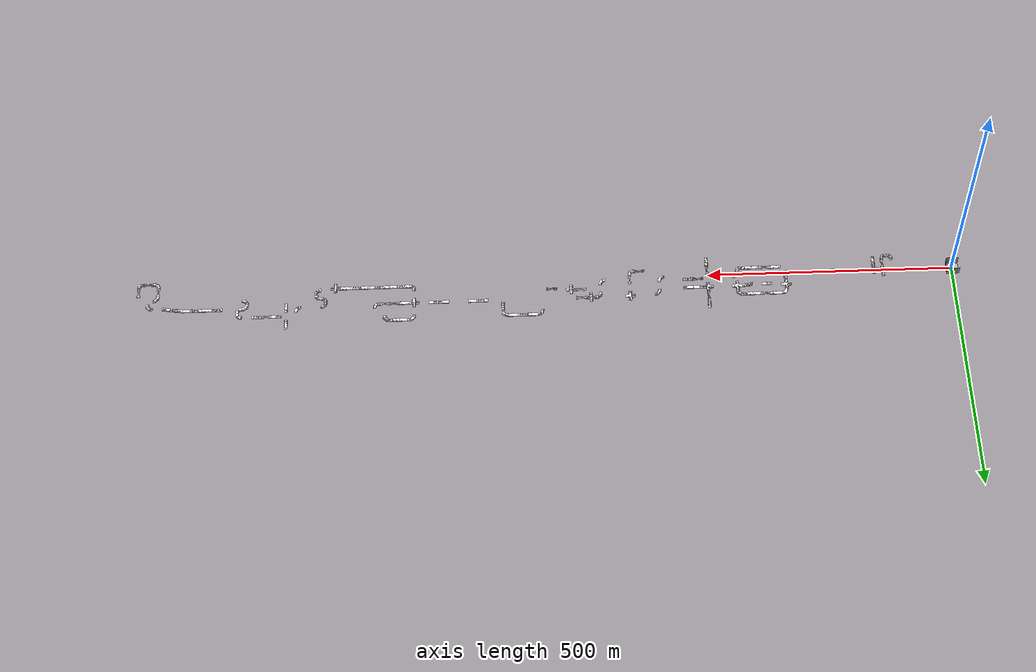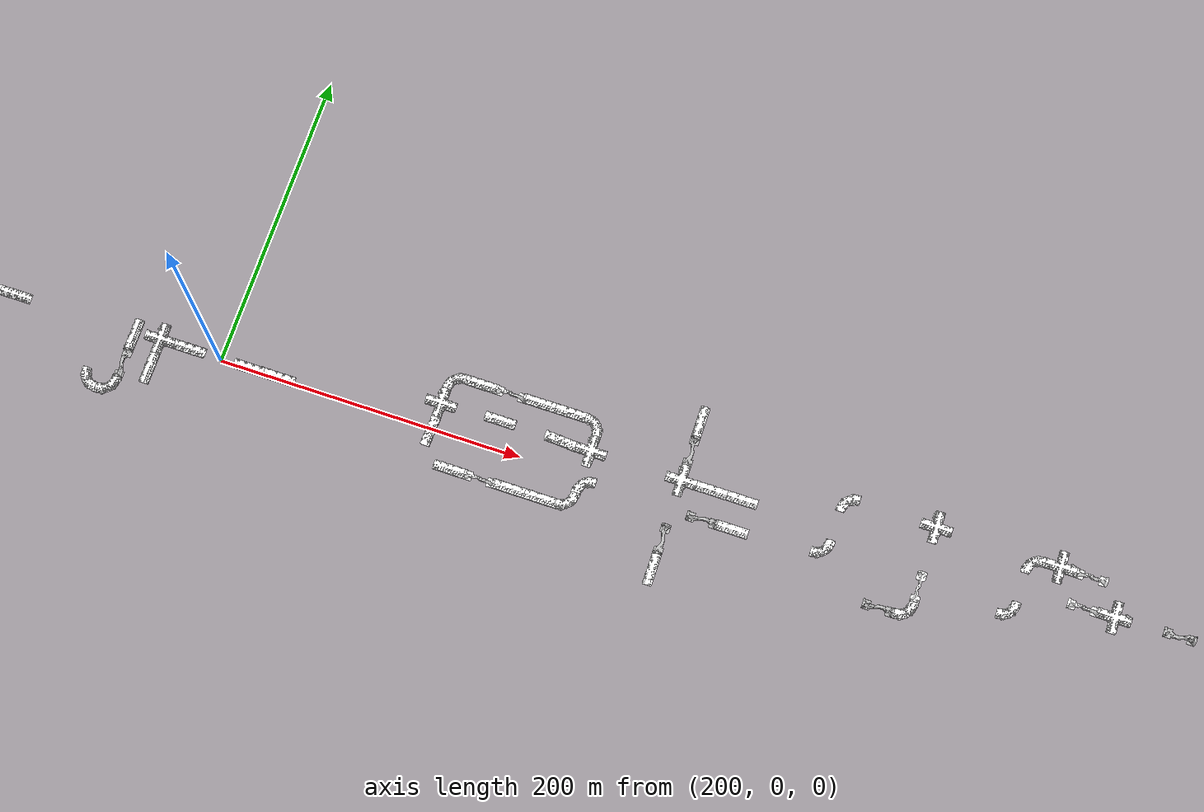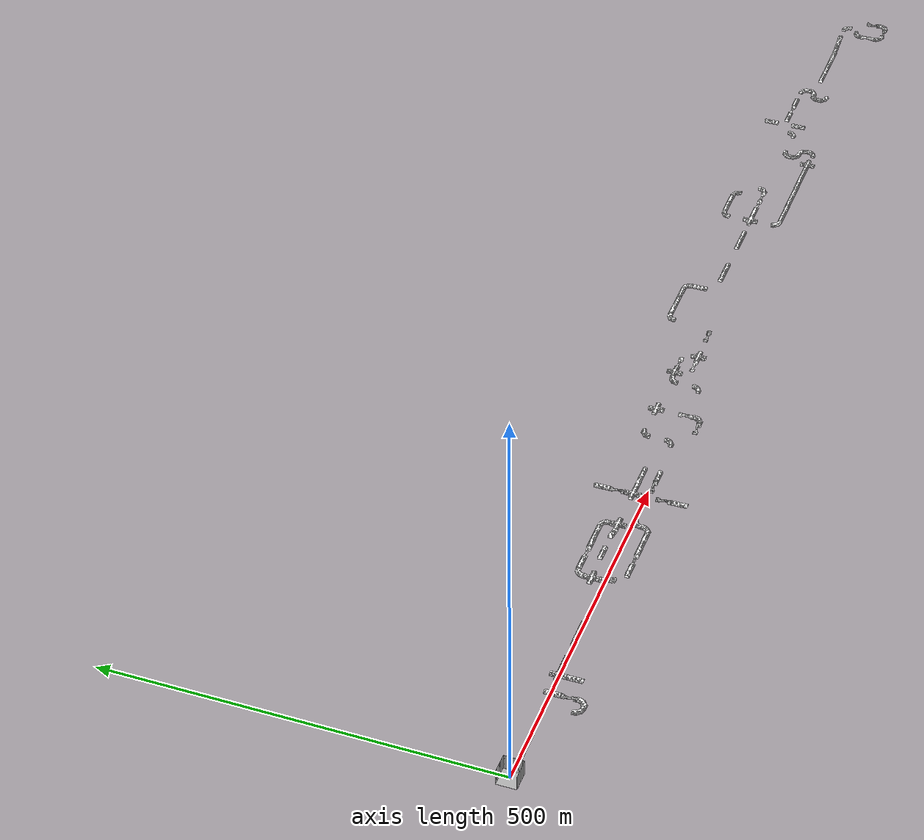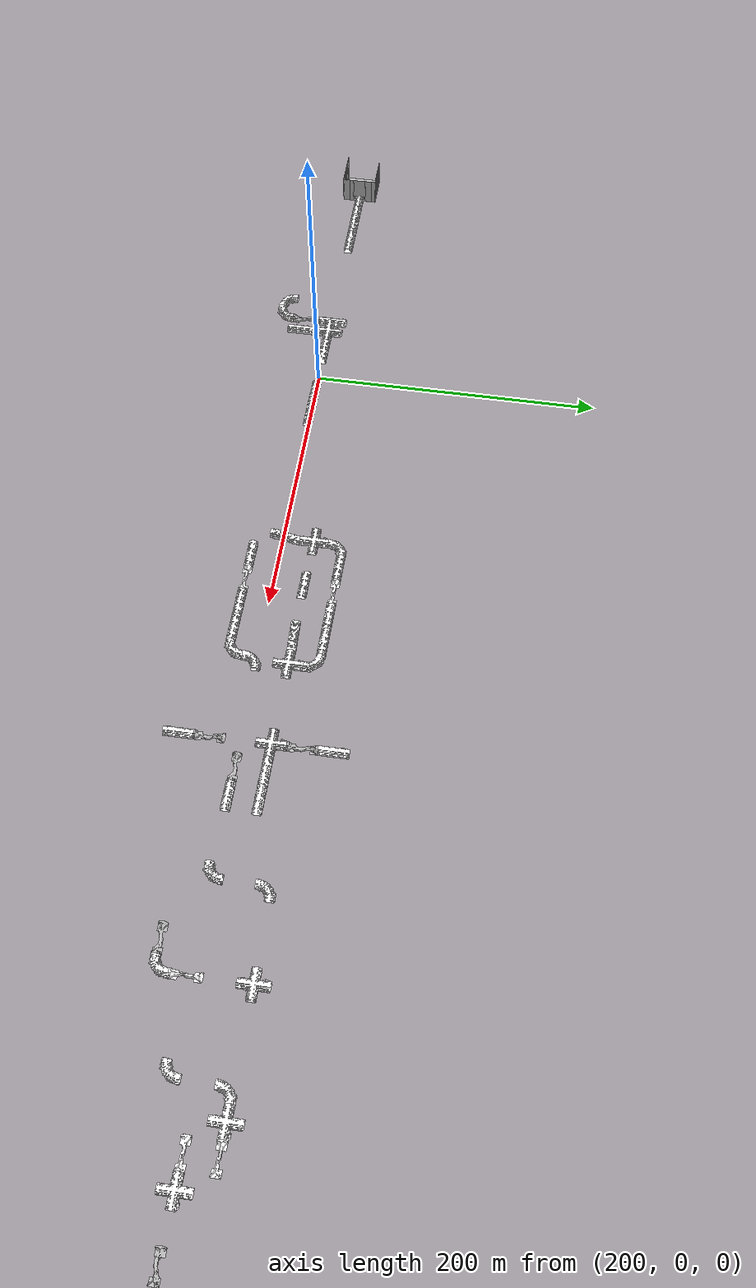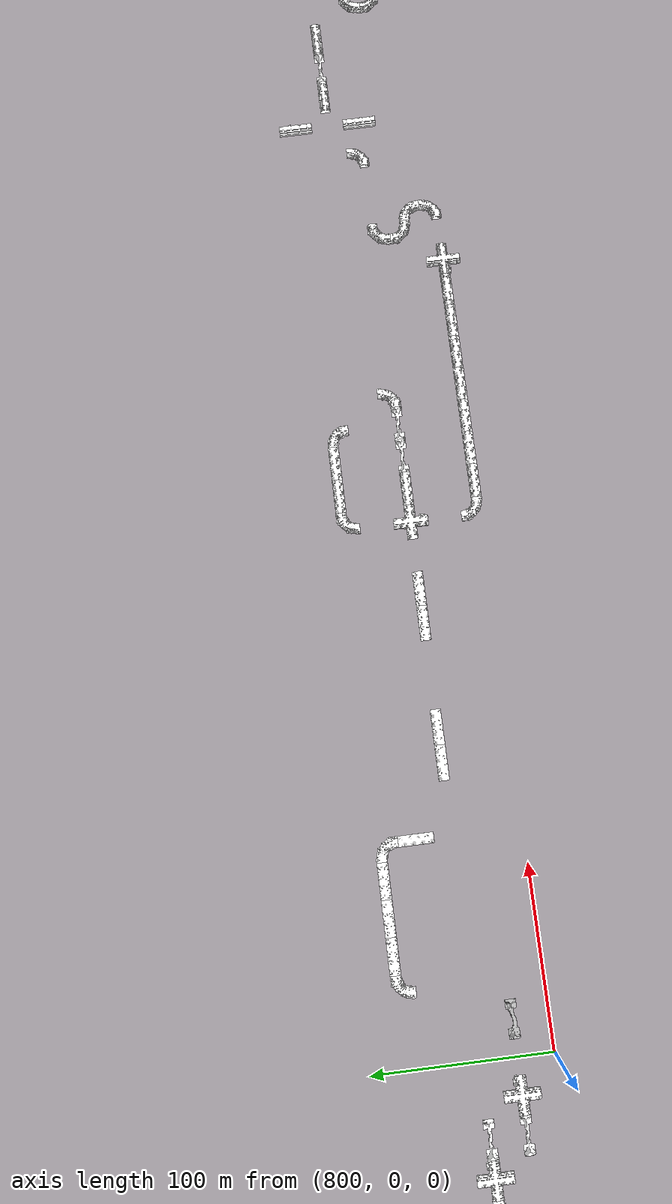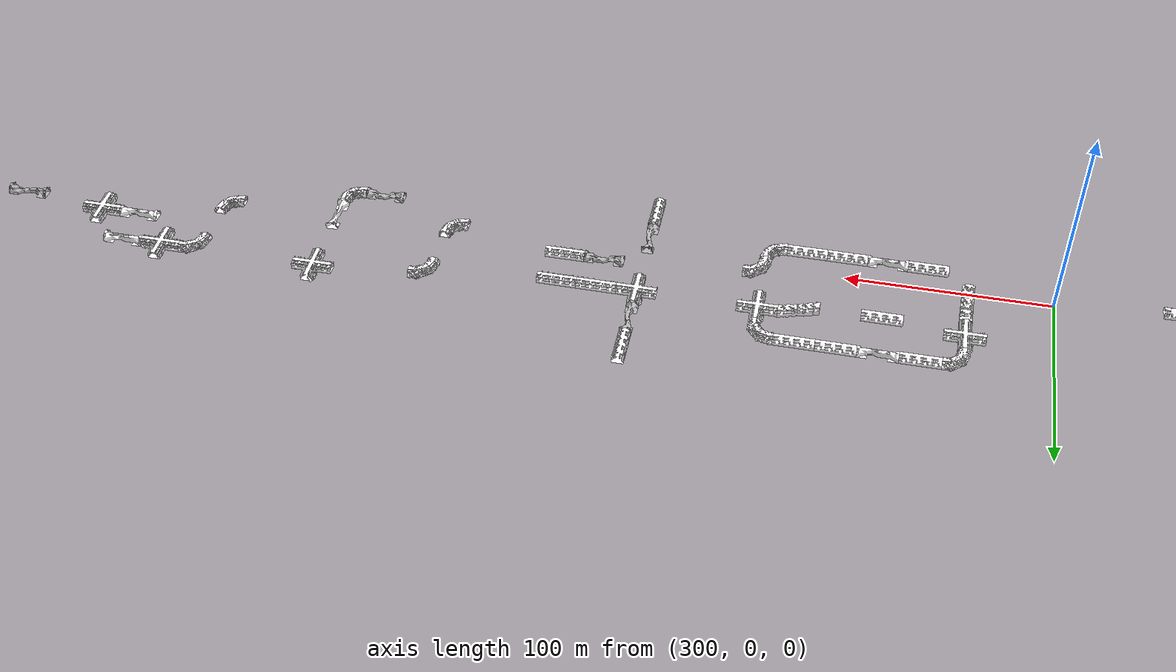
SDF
<sdf version="1.6">
 <world name="tunnel_circuit_practice_02">
  <physics name="1ms" type="ode">
   <max_step_size>0.004</max_step_size>
   <real_time_factor>1.0</real_time_factor>
  </physics>
  <scene>
   <ambient>1 1 1 1</ambient>
   <background>0.8 0.8 0.8 1</background>
   <shadows>true</shadows>
   <grid>true</grid>
   <origin_visual>true</origin_visual>
  </scene>
  <include><static>true</static><name>staging_area</name><uri>model://subt_tunnel_staging_area</uri></include>
  <include>
   <name>tile_1</name>
   <uri>model://Rough Tunnel Tile 90-degree Turn</uri>
   <pose>840.000000 80.000000 0.000000 0 0 0.000000</pose>
  </include>
  <include>
   <name>tile_2</name>
   <uri>model://Tunnel Tile 5</uri>
   <pose>860.000000 80.000000 0.000000 0 0 -1.570796</pose>
  </include>
  <include>
   <name>tile_3</name>
   <uri>model://Tunnel Tile 5</uri>
   <pose>880.000000 80.000000 0.000000 0 0 -1.570796</pose>
  </include>
  <include>
   <name>tile_4</name>
   <uri>model://Tunnel Tile 5</uri>
   <pose>900.000000 80.000000 0.000000 0 0 -1.570796</pose>
  </include>
  <include>
   <name>tile_5</name>
   <uri>model://Rough Tunnel Tile 90-degree Turn</uri>
   <pose>920.000000 80.000000 0.000000 0 0 -1.570796</pose>
  </include>
  <include>
   <name>tile_6</name>
   <uri>model://Rough Tunnel Tile 90-degree Turn</uri>
   <pose>1100.000000 80.000000 -5.000000 0 0 0.000000</pose>
  </include>
  <include>
   <name>tile_7</name>
   <uri>model://Tunnel Tile 5</uri>
   <pose>1120.000000 80.000000 -5.000000 0 0 1.570796</pose>
  </include>
  <include>
   <name>tile_8</name>
   <uri>model://Tunnel Tile 5</uri>
   <pose>1140.000000 80.000000 -5.000000 0 0 1.570796</pose>
  </include>
  <include>
   <name>tile_9</name>
   <uri>model://Rough Tunnel Tile 90-degree Turn</uri>
   <pose>1160.000000 80.000000 -5.000000 0 0 -1.570796</pose>
  </include>
  <include>
   <name>tile_10</name>
   <uri>model://Tunnel Tile 5</uri>
   <pose>1360.000000 80.000000 -10.000000 0 0 0.000000</pose>
  </include>
  <include>
   <name>tile_12</name>
   <uri>model://Tunnel Tile 5</uri>
   <pose>500.000000 60.000000 -10.000000 0 0 -3.141593</pose>
  </include>
  <include>
   <name>tile_15</name>
   <uri>model://Tunnel Tile 5</uri>
   <pose>920.000000 60.000000 0.000000 0 0 -3.141593</pose>
  </include>
  <include>
   <name>tile_19</name>
   <uri>model://Tunnel Tile 5</uri>
   <pose>1380.000000 60.000000 -10.000000 0 0 -1.570796</pose>
  </include>
  <include>
   <name>tile_20</name>
   <uri>model://Constrained Tunnel Tile Tall</uri>
   <pose>1400.000000 60.000000 -10.000000 0 0 1.570796</pose>
  </include>
  <include>
   <name>tile_21</name>
   <uri>model://Tunnel Tile 5</uri>
   <pose>1420.000000 60.000000 -10.000000 0 0 1.570796</pose>
  </include>
  <include>
   <name>tile_23</name>
   <uri>model://Rough Tunnel Tile 90-degree Turn</uri>
   <pose>1460.000000 60.000000 -10.000000 0 0 -1.570796</pose>
  </include>
  <include>
   <name>tile_27</name>
   <uri>model://Rough Tunnel Tile 90-degree Turn</uri>
   <pose>340.000000 40.000000 -10.000000 0 0 0.000000</pose>
  </include>
  <include>
   <name>tile_28</name>
   <uri>model://Tunnel Tile 5</uri>
   <pose>360.000000 40.000000 -10.000000 0 0 1.570796</pose>
  </include>
  <include>
   <name>tile_29</name>
   <uri>model://Constrained Tunnel Tile Tall</uri>
   <pose>380.000000 40.000000 -10.000000 0 0 1.570796</pose>
  </include>
  <include>
   <name>tile_30</name>
   <uri>model://Tunnel Tile 5</uri>
   <pose>400.000000 40.000000 -10.000000 0 0 1.570796</pose>
  </include>
  <include>
   <name>tile_31</name>
   <uri>model://Tunnel Tile 5</uri>
   <pose>420.000000 40.000000 -10.000000 0 0 1.570796</pose>
  </include>
  <include>
   <name>tile_32</name>
   <uri>model://Rough Tunnel Tile 90-degree Turn</uri>
   <pose>440.000000 40.000000 -10.000000 0 0 -1.570796</pose>
  </include>
  <include>
   <name>tile_33</name>
   <uri>model://Constrained Tunnel Tile Short</uri>
   <pose>500.000000 40.000000 -10.000000 0 0 0.000000</pose>
  </include>
  <include>
   <name>tile_34</name>
   <uri>model://Rough Tunnel Tile 90-degree Turn</uri>
   <pose>600.000000 40.000000 0.000000 0 0 0.000000</pose>
  </include>
  <include>
   <name>tile_37</name>
   <uri>model://Rough Tunnel Tile 4-way Intersection</uri>
   <pose>660.000000 40.000000 -5.000000 0 0 1.570796</pose>
  </include>
  <include>
   <name>tile_40</name>
   <uri>model://Rough Tunnel Tile 90-degree Turn</uri>
   <pose>720.000000 40.000000 -5.000000 0 0 0.000000</pose>
  </include>
  <include>
   <name>tile_41</name>
   <uri>model://Rough Tunnel Tile 4-way Intersection</uri>
   <pose>740.000000 40.000000 -5.000000 0 0 0.000000</pose>
  </include>
  <include>
   <name>tile_43</name>
   <uri>model://Constrained Tunnel Tile Tall</uri>
   <pose>760.000000 40.000000 -5.000000 0 0 -1.570796</pose>
  </include>
  <include>
   <name>tile_48</name>
   <uri>model://Tunnel Tile 5</uri>
   <pose>960.000000 40.000000 -5.000000 0 0 1.570796</pose>
  </include>
  <include>
   <name>tile_49</name>
   <uri>model://Tunnel Tile 5</uri>
   <pose>980.000000 40.000000 -5.000000 0 0 1.570796</pose>
  </include>
  <include>
   <name>tile_52</name>
   <uri>model://Tunnel Tile 5</uri>
   <pose>1040.000000 40.000000 -5.000000 0 0 -1.570796</pose>
  </include>
  <include>
   <name>tile_53</name>
   <uri>model://Tunnel Tile 5</uri>
   <pose>1060.000000 40.000000 -5.000000 0 0 -1.570796</pose>
  </include>
  <include>
   <name>tile_55</name>
   <uri>model://Rough Tunnel Tile 4-way Intersection</uri>
   <pose>1100.000000 40.000000 -5.000000 0 0 -1.570796</pose>
  </include>
  <include>
   <name>tile_56</name>
   <uri>model://Tunnel Tile 5</uri>
   <pose>1120.000000 40.000000 -5.000000 0 0 1.570796</pose>
  </include>
  <include>
   <name>tile_57</name>
   <uri>model://Constrained Tunnel Tile Tall</uri>
   <pose>1140.000000 40.000000 -5.000000 0 0 -1.570796</pose>
  </include>
  <include>
   <name>tile_58</name>
   <uri>model://Constrained Tunnel Tile Tall</uri>
   <pose>1160.000000 40.000000 -5.000000 0 0 -1.570796</pose>
  </include>
  <include>
   <name>tile_60</name>
   <uri>model://Rough Tunnel Tile 90-degree Turn</uri>
   <pose>1180.000000 40.000000 -5.000000 0 0 -3.141593</pose>
  </include>
  <include>
   <name>tile_62</name>
   <uri>model://Rough Tunnel Tile 90-degree Turn</uri>
   <pose>1280.000000 40.000000 -10.000000 0 0 0.000000</pose>
  </include>
  <include>
   <name>tile_65</name>
   <uri>model://Rough Tunnel Tile 90-degree Turn</uri>
   <pose>1340.000000 40.000000 -10.000000 0 0 -3.141593</pose>
  </include>
  <include>
   <name>tile_66</name>
   <uri>model://Tunnel Tile 5</uri>
   <pose>1360.000000 40.000000 -10.000000 0 0 0.000000</pose>
  </include>
  <include>
   <name>tile_68</name>
   <uri>model://Rough Tunnel Tile 90-degree Turn</uri>
   <pose>1440.000000 40.000000 -10.000000 0 0 0.000000</pose>
  </include>
  <include>
   <name>tile_69</name>
   <uri>model://Rough Tunnel Tile 90-degree Turn</uri>
   <pose>1460.000000 40.000000 -10.000000 0 0 -3.141593</pose>
  </include>
  <include>
   <name>tile_71</name>
   <uri>model://Tunnel Tile 5</uri>
   <pose>1500.000000 40.000000 -10.000000 0 0 -1.570796</pose>
  </include>
  <include>
   <name>tile_72</name>
   <uri>model://Tunnel Tile 5</uri>
   <pose>1520.000000 40.000000 -10.000000 0 0 -1.570796</pose>
  </include>
  <include>
   <name>tile_73</name>
   <uri>model://Tunnel Tile 5</uri>
   <pose>1540.000000 40.000000 -10.000000 0 0 -1.570796</pose>
  </include>
  <include>
   <name>tile_74</name>
   <uri>model://Tunnel Tile 5</uri>
   <pose>1560.000000 40.000000 -10.000000 0 0 -1.570796</pose>
  </include>
  <include>
   <name>tile_75</name>
   <uri>model://Tunnel Tile 6</uri>
   <pose>1580.000000 40.000000 -10.000000 0 0 -1.570796</pose>
  </include>
  <include>
   <name>tile_76</name>
   <uri>model://Tunnel Tile 6</uri>
   <pose>1600.000000 40.000000 -5.000000 0 0 -1.570796</pose>
  </include>
  <include>
   <name>tile_78</name>
   <uri>model://Rough Tunnel Tile 90-degree Turn</uri>
   <pose>1640.000000 40.000000 0.000000 0 0 -1.570796</pose>
  </include>
  <include>
   <name>tile_85</name>
   <uri>model://Rough Tunnel Tile 4-way Intersection</uri>
   <pose>340.000000 20.000000 -10.000000 0 0 1.570796</pose>
  </include>
  <include>
   <name>tile_87</name>
   <uri>model://Tunnel Tile 5</uri>
   <pose>380.000000 20.000000 -5.000000 0 0 1.570796</pose>
  </include>
  <include>
   <name>tile_89</name>
   <uri>model://Tunnel Tile 6</uri>
   <pose>420.000000 20.000000 -10.000000 0 0 1.570796</pose>
  </include>
  <include>
   <name>tile_90</name>
   <uri>model://Rough Tunnel Tile 4-way Intersection</uri>
   <pose>440.000000 20.000000 -10.000000 0 0 1.570796</pose>
  </include>
  <include>
   <name>tile_94</name>
   <uri>model://Rough Tunnel Tile 4-way Intersection</uri>
   <pose>500.000000 20.000000 -10.000000 0 0 1.570796</pose>
  </include>
  <include>
   <name>tile_95</name>
   <uri>model://Tunnel Tile 5</uri>
   <pose>520.000000 20.000000 -10.000000 0 0 -1.570796</pose>
  </include>
  <include>
   <name>tile_96</name>
   <uri>model://Tunnel Tile 5</uri>
   <pose>540.000000 20.000000 -10.000000 0 0 -1.570796</pose>
  </include>
  <include>
   <name>tile_107</name>
   <uri>model://Constrained Tunnel Tile Tall</uri>
   <pose>760.000000 20.000000 -5.000000 0 0 1.570796</pose>
  </include>
  <include>
   <name>tile_108</name>
   <uri>model://Rough Tunnel Tile 4-way Intersection</uri>
   <pose>780.000000 20.000000 -5.000000 0 0 0.000000</pose>
  </include>
  <include>
   <name>tile_111</name>
   <uri>model://Constrained Tunnel Tile Short</uri>
   <pose>820.000000 20.000000 0.000000 0 0 -1.570796</pose>
  </include>
  <include>
   <name>tile_116</name>
   <uri>model://Rough Tunnel Tile 90-degree Turn</uri>
   <pose>1280.000000 20.000000 -10.000000 0 0 1.570796</pose>
  </include>
  <include>
   <name>tile_117</name>
   <uri>model://Rough Tunnel Tile 90-degree Turn</uri>
   <pose>1300.000000 20.000000 -10.000000 0 0 -1.570796</pose>
  </include>
  <include>
   <name>tile_118</name>
   <uri>model://Rough Tunnel Tile 90-degree Turn</uri>
   <pose>1440.000000 20.000000 -10.000000 0 0 1.570796</pose>
  </include>
  <include>
   <name>tile_121</name>
   <uri>model://Rough Tunnel Tile 90-degree Turn</uri>
   <pose>1620.000000 20.000000 0.000000 0 0 0.000000</pose>
  </include>
  <include>
   <name>tile_125</name>
   <uri>model://Tunnel Tile 5</uri>
   <pose>20.000000 0.000000 0.000000 0 0 -1.570796</pose>
  </include>
  <include>
   <name>tile_126</name>
   <uri>model://Tunnel Tile 5</uri>
   <pose>40.000000 0.000000 0.000000 0 0 -1.570796</pose>
  </include>
  <include>
   <name>tile_127</name>
   <uri>model://Tunnel Tile 5</uri>
   <pose>60.000000 0.000000 0.000000 0 0 -1.570796</pose>
  </include>
  <include>
   <name>tile_132</name>
   <uri>model://Tunnel Tile 5</uri>
   <pose>140.000000 0.000000 -5.000000 0 0 -3.141593</pose>
  </include>
  <include>
   <name>tile_134</name>
   <uri>model://Rough Tunnel Tile 4-way Intersection</uri>
   <pose>160.000000 0.000000 5.000000 0 0 1.570796</pose>
  </include>
  <include>
   <name>tile_136</name>
   <uri>model://Tunnel Tile 5</uri>
   <pose>180.000000 0.000000 5.000000 0 0 1.570796</pose>
  </include>
  <include>
   <name>tile_138</name>
   <uri>model://Tunnel Tile 5</uri>
   <pose>220.000000 0.000000 5.000000 0 0 1.570796</pose>
  </include>
  <include>
   <name>tile_139</name>
   <uri>model://Tunnel Tile 5</uri>
   <pose>240.000000 0.000000 5.000000 0 0 1.570796</pose>
  </include>
  <include>
   <name>tile_141</name>
   <uri>model://Tunnel Tile 6</uri>
   <pose>340.000000 0.000000 -10.000000 0 0 -3.141593</pose>
  </include>
  <include>
   <name>tile_142</name>
   <uri>model://Rough Tunnel Tile 90-degree Turn</uri>
   <pose>440.000000 0.000000 -5.000000 0 0 0.000000</pose>
  </include>
  <include>
   <name>tile_146</name>
   <uri>model://Constrained Tunnel Tile Short</uri>
   <pose>520.000000 0.000000 -10.000000 0 0 1.570796</pose>
  </include>
  <include>
   <name>tile_147</name>
   <uri>model://Tunnel Tile 5</uri>
   <pose>540.000000 0.000000 -10.000000 0 0 -1.570796</pose>
  </include>
  <include>
   <name>tile_151</name>
   <uri>model://Rough Tunnel Tile 90-degree Turn</uri>
   <pose>600.000000 0.000000 0.000000 0 0 -3.141593</pose>
  </include>
  <include>
   <name>tile_153</name>
   <uri>model://Constrained Tunnel Tile Tall</uri>
   <pose>660.000000 0.000000 -5.000000 0 0 0.000000</pose>
  </include>
  <include>
   <name>tile_155</name>
   <uri>model://Rough Tunnel Tile 90-degree Turn</uri>
   <pose>720.000000 0.000000 -5.000000 0 0 -3.141593</pose>
  </include>
  <include>
   <name>tile_156</name>
   <uri>model://Rough Tunnel Tile 90-degree Turn</uri>
   <pose>1100.000000 0.000000 -5.000000 0 0 1.570796</pose>
  </include>
  <include>
   <name>tile_157</name>
   <uri>model://Tunnel Tile 5</uri>
   <pose>1120.000000 0.000000 -5.000000 0 0 1.570796</pose>
  </include>
  <include>
   <name>tile_158</name>
   <uri>model://Tunnel Tile 5</uri>
   <pose>1140.000000 0.000000 -5.000000 0 0 1.570796</pose>
  </include>
  <include>
   <name>tile_159</name>
   <uri>model://Tunnel Tile 5</uri>
   <pose>1160.000000 0.000000 -5.000000 0 0 1.570796</pose>
  </include>
  <include>
   <name>tile_160</name>
   <uri>model://Tunnel Tile 5</uri>
   <pose>1180.000000 0.000000 -5.000000 0 0 1.570796</pose>
  </include>
  <include>
   <name>tile_161</name>
   <uri>model://Tunnel Tile 5</uri>
   <pose>1200.000000 0.000000 -5.000000 0 0 1.570796</pose>
  </include>
  <include>
   <name>tile_162</name>
   <uri>model://Tunnel Tile 5</uri>
   <pose>1220.000000 0.000000 -5.000000 0 0 1.570796</pose>
  </include>
  <include>
   <name>tile_163</name>
   <uri>model://Tunnel Tile 5</uri>
   <pose>1240.000000 0.000000 -5.000000 0 0 1.570796</pose>
  </include>
  <include>
   <name>tile_164</name>
   <uri>model://Rough Tunnel Tile 4-way Intersection</uri>
   <pose>1260.000000 0.000000 -5.000000 0 0 -3.141593</pose>
  </include>
  <include>
   <name>tile_166</name>
   <uri>model://Rough Tunnel Tile 90-degree Turn</uri>
   <pose>1300.000000 0.000000 -10.000000 0 0 -3.141593</pose>
  </include>
  <include>
   <name>tile_167</name>
   <uri>model://Constrained Tunnel Tile Tall</uri>
   <pose>1620.000000 0.000000 0.000000 0 0 0.000000</pose>
  </include>
  <include>
   <name>tile_168</name>
   <uri>model://Constrained Tunnel Tile Short</uri>
   <pose>1660.000000 0.000000 0.000000 0 0 -3.141593</pose>
  </include>
  <include>
   <name>tile_170</name>
   <uri>model://Constrained Tunnel Tile Short</uri>
   <pose>140.000000 -20.000000 -5.000000 0 0 -3.141593</pose>
  </include>
  <include>
   <name>tile_171</name>
   <uri>model://Tunnel Tile 5</uri>
   <pose>160.000000 -20.000000 5.000000 0 0 -3.141593</pose>
  </include>
  <include>
   <name>tile_174</name>
   <uri>model://Tunnel Tile 5</uri>
   <pose>360.000000 -20.000000 -5.000000 0 0 1.570796</pose>
  </include>
  <include>
   <name>tile_175</name>
   <uri>model://Constrained Tunnel Tile Tall</uri>
   <pose>380.000000 -20.000000 -5.000000 0 0 1.570796</pose>
  </include>
  <include>
   <name>tile_176</name>
   <uri>model://Tunnel Tile 5</uri>
   <pose>400.000000 -20.000000 -5.000000 0 0 1.570796</pose>
  </include>
  <include>
   <name>tile_177</name>
   <uri>model://Tunnel Tile 5</uri>
   <pose>420.000000 -20.000000 -5.000000 0 0 1.570796</pose>
  </include>
  <include>
   <name>tile_178</name>
   <uri>model://Rough Tunnel Tile 90-degree Turn</uri>
   <pose>440.000000 -20.000000 -5.000000 0 0 -3.141593</pose>
  </include>
  <include>
   <name>tile_179</name>
   <uri>model://Constrained Tunnel Tile Short</uri>
   <pose>500.000000 -20.000000 -10.000000 0 0 0.000000</pose>
  </include>
  <include>
   <name>tile_181</name>
   <uri>model://Constrained Tunnel Tile Short</uri>
   <pose>640.000000 -20.000000 -5.000000 0 0 1.570796</pose>
  </include>
  <include>
   <name>tile_182</name>
   <uri>model://Rough Tunnel Tile 90-degree Turn</uri>
   <pose>660.000000 -20.000000 -5.000000 0 0 -3.141593</pose>
  </include>
  <include>
   <name>tile_185</name>
   <uri>model://Rough Tunnel Tile 90-degree Turn</uri>
   <pose>1620.000000 -20.000000 0.000000 0 0 1.570796</pose>
  </include>
  <include>
   <name>tile_186</name>
   <uri>model://Constrained Tunnel Tile Short</uri>
   <pose>1640.000000 -20.000000 0.000000 0 0 1.570796</pose>
  </include>
  <include>
   <name>tile_187</name>
   <uri>model://Rough Tunnel Tile 90-degree Turn</uri>
   <pose>1660.000000 -20.000000 0.000000 0 0 -3.141593</pose>
  </include>
  <include>
   <name>tile_188</name>
   <uri>model://Rough Tunnel Tile 90-degree Turn</uri>
   <pose>120.000000 -40.000000 -5.000000 0 0 1.570796</pose>
  </include>
  <include>
   <name>tile_189</name>
   <uri>model://Rough Tunnel Tile 90-degree Turn</uri>
   <pose>140.000000 -40.000000 -5.000000 0 0 -3.141593</pose>
  </include>
  <include>
   <name>tile_190</name>
   <uri>model://Tunnel Tile 5</uri>
   <pose>500.000000 -40.000000 -10.000000 0 0 -3.141593</pose>
  </include>
 </world>
</sdf>

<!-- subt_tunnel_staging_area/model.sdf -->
<sdf version="1.6">
    <model name="subt_tunnel_staging_area">
        <static>true</static>
        <link name="link">
            <collision name="collision1">
                <pose>-10 -10 20 0 0 0</pose>
                <geometry>
                    <box>
                        <size>0.1 0.1 0.1</size>
                    </box>
                </geometry>
            </collision>
            <collision name="collision2">
                <pose>10 10 20 0 0 0</pose>
                <geometry>
                    <box>
                        <size>0.1 0.1 0.1</size>
                    </box>
                </geometry>
            </collision>
            <!-- The flat area where the robots starts -->
            <visual name="plane_visual">
                <pose>-1.181716 0 0 0 0 0</pose>
                <geometry>
                    <mesh>
                      <uri>model://subt_tunnel_staging_area/meshes/Asphalt_Plane.DAE</uri>
                    </mesh>
                </geometry>
            </visual>
            <visual name="fence_right1">
                <pose>8.818284 -12.4 0 1.5707 0 0</pose>
                <geometry>
                    <mesh>
                      <uri>model://subt_tunnel_staging_area/meshes/Fence.dae</uri>
                        <scale>1 6.7 1</scale>
                    </mesh>
                </geometry>
            </visual>
            <visual name="fence_right2">
                <pose>3.818284 -12.4 0 1.5707 0 0</pose>
                <geometry>
                    <mesh>
                      <uri>model://subt_tunnel_staging_area/meshes/Fence.dae</uri>
                        <scale>1 6.7 1</scale>
                    </mesh>
                </geometry>
            </visual>
            <visual name="fence_right3">
                <pose>-1.181716 -12.4 0 1.5707 0 0</pose>
                <geometry>
                    <mesh>
                      <uri>model://subt_tunnel_staging_area/meshes/Fence.dae</uri>
                        <scale>1 6.7 1</scale>
                    </mesh>
                </geometry>
            </visual>
            <visual name="fence_right4">
                <pose>-6.181716 -12.4 0 1.5707 0 0</pose>
                <geometry>
                    <mesh>
                      <uri>model://subt_tunnel_staging_area/meshes/Fence.dae</uri>
                        <scale>1 6.7 1</scale>
                    </mesh>
                </geometry>
            </visual>
            <visual name="fence_right5">
                <pose>-11.181716 -12.4 0 1.5707 0 0</pose>
                <geometry>
                    <mesh>
                      <uri>model://subt_tunnel_staging_area/meshes/Fence.dae</uri>
                        <scale>1 6.7 1</scale>
                    </mesh>
                </geometry>
            </visual>

            <visual name="fence_left1">
                <pose>8.818284 12.4 0 1.5707 0 3.1415</pose>
                <geometry>
                    <mesh>
                      <uri>model://subt_tunnel_staging_area/meshes/Fence.dae</uri>
                        <scale>1 6.7 1</scale>
                    </mesh>
                </geometry>
            </visual>
            <visual name="fence_left2">
                <pose>3.818284 12.4 0 1.5707 0 3.1415</pose>
                <geometry>
                    <mesh>
                      <uri>model://subt_tunnel_staging_area/meshes/Fence.dae</uri>
                        <scale>1 6.7 1</scale>
                    </mesh>
                </geometry>
            </visual>
            <visual name="fence_left3">
                <pose>-1.181716 12.4 0 1.5707 0 3.1415</pose>
                <geometry>
                    <mesh>
                      <uri>model://subt_tunnel_staging_area/meshes/Fence.dae</uri>
                        <scale>1 6.7 1</scale>
                    </mesh>
                </geometry>
            </visual>
            <visual name="fence_left4">
                <pose>-6.181716 12.4 0 1.5707 0 3.1415</pose>
                <geometry>
                    <mesh>
                      <uri>model://subt_tunnel_staging_area/meshes/Fence.dae</uri>
                        <scale>1 6.7 1</scale>
                    </mesh>
                </geometry>
            </visual>
            <visual name="fence_left5">
                <pose>-11.181716 12.4 0 1.5707 0 3.1415</pose>
                <geometry>
                    <mesh>
                      <uri>model://subt_tunnel_staging_area/meshes/Fence.dae</uri>
                        <scale>1 6.7 1</scale>
                    </mesh>
                </geometry>
            </visual>

            <visual name="fence_front_left1">
                <pose>11.3181716 10 0 1.5707 0 1.5707</pose>
                <geometry>
                    <mesh>
                      <uri>model://subt_tunnel_staging_area/meshes/Fence.dae</uri>
                        <scale>1 6.7 1</scale>
                    </mesh>
                </geometry>
            </visual>
            <visual name="fence_front_left2">
                <pose>11.3181716 7 0 1.5707 0 1.5707</pose>
                <geometry>
                    <mesh>
                      <uri>model://subt_tunnel_staging_area/meshes/Fence.dae</uri>
                        <scale>1 6.7 1</scale>
                    </mesh>
                </geometry>
            </visual>
            <visual name="fence_front_right1">
                <pose>11.3181716 -10 0 1.5707 0 1.5707</pose>
                <geometry>
                    <mesh>
                      <uri>model://subt_tunnel_staging_area/meshes/Fence.dae</uri>
                        <scale>1 6.7 1</scale>
                    </mesh>
                </geometry>
            </visual>
            <visual name="fence_front_right2">
                <pose>11.3181716 -7 0 1.5707 0 1.5707</pose>
                <geometry>
                    <mesh>
                      <uri>model://subt_tunnel_staging_area/meshes/Fence.dae</uri>
                        <scale>1 6.7 1</scale>
                    </mesh>
                </geometry>
            </visual>
            <visual name="fence_front_top">
                <pose>11.3181716 0 4.5 1.5707 0 1.5707</pose>
                <geometry>
                    <mesh>
                      <uri>model://subt_tunnel_staging_area/meshes/Fence.dae</uri>
                        <scale>1.8 5.17 1</scale>
                    </mesh>
                </geometry>
            </visual>

            <collision name="ceiling_collision">
                <pose>-1.181716 0 20.5 0 0 0</pose>
                <geometry>
                    <box>
                        <size>25 25 1</size>
                    </box>
                </geometry>
            </collision>
            <collision name="right_collision">
                <pose>-1.181716 -13 10.5 0 0 0</pose>
                <geometry>
                    <box>
                        <size>25 1 21</size>
                    </box>
                </geometry>
            </collision>
            <collision name="left_collision">
                <pose>-1.181716 13 10.5 0 0 0</pose>
                <geometry>
                    <box>
                        <size>25 1 21</size>
                    </box>
                </geometry>
            </collision>
            <collision name="rear_collision">
                <pose>-13.6181716 0 10.5 0 0 0</pose>
                <geometry>
                    <box>
                        <size>1 25 21</size>
                    </box>
                </geometry>
            </collision>
            <collision name="front_left_collision">
                <pose>11.3181716 8.75 10.5 0 0 0</pose>
                <geometry>
                    <box>
                        <size>1 9.5 21</size>
                    </box>
                </geometry>
            </collision>
            <collision name="front_right_collision">
                <pose>11.3181716 -8.75 10.5 0 0 0</pose>
                <geometry>
                    <box>
                        <size>1 9.5 21</size>
                    </box>
                </geometry>
            </collision>
            <collision name="front_top_collision">
                <pose>11.3181716 0 12.5 0 0 0</pose>
                <geometry>
                    <box>
                        <size>1 8 15</size>
                    </box>
                </geometry>
            </collision>

            <collision name="plane_collision">
                <pose>-1.181716 0 -0.502 0 0 0</pose>
                <geometry>
                    <box>
                        <size>25 25 1</size>
                    </box>
                </geometry>
            </collision>
            <!-- Entry to the tunnel -->
            <collision name="collision">
                <pose>10 0 -0.001 0 0 -1.5707963267948966</pose>
                <geometry>
                    <mesh>
                        <scale>0.93 0.93 0.93</scale>
                        <uri>model://subt_tunnel_staging_area/meshes/Entrance.dae</uri>
                    </mesh>
                </geometry>
            </collision>
            <visual name="visual">
                <pose>10 0 -0.001 0 0 -1.5707963267948966</pose>
                <geometry>
                    <mesh>
                        <scale>0.93 0.93 0.93</scale>
                        <uri>model://subt_tunnel_staging_area/meshes/Entrance.dae</uri>
                    </mesh>
                </geometry>
            </visual>
        </link>
    </model>
</sdf>

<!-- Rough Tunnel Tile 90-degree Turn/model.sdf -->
<sdf version="1.6">
  <model name="Rough Tunnel Tile 90-degree Turn">
    <static>true</static>
    <link name="link">
      <collision name="collision">
        <geometry>
          <mesh>
            <uri>model://Rough Tunnel Tile 90-degree Turn/meshes/90deg_turn_collider.dae</uri>
          </mesh>
        </geometry>
      </collision>
      <collision name="collision_ground">
        <geometry>
          <box>
            <size>5 20 0.001</size>
          </box>
        </geometry>
      </collision>

      <!-- rough terrain tile -->
      <visual name="visual_rough_rocks">
        <geometry>
          <mesh>
            <uri>model://Rough Tunnel Tile 90-degree Turn/meshes/90deg_turn_rough_terrain.dae</uri>
            <submesh>
              <name>Rocks</name>
              <center>false</center>
            </submesh>
            <scale>1.005 1.005 1.0</scale>
          </mesh>
        </geometry>
        <material>
          <diffuse>1.0 1.0 1.0</diffuse>
          <specular>1.0 1.0 1.0</specular>
          <script>
              <uri>model://Rough Tunnel Tile 90-degree Turn/materials/scripts</uri>
              <uri>model://Rough Tunnel Tile 90-degree Turn/materials/textures</uri>
              <name>RoughTunnelTile/Rocks_Diffuse</name>
          </script>
        </material>
      </visual>
      <visual name="visual_rough_rock_pile">
        <geometry>
          <mesh>
            <uri>model://Rough Tunnel Tile 90-degree Turn/meshes/90deg_turn_rough_terrain.dae</uri>
            <submesh>
              <name>RockPile</name>
              <center>false</center>
            </submesh>
            <scale>1.005 1.005 1.0</scale>
          </mesh>
        </geometry>
        <material>
          <diffuse>1.0 1.0 1.0</diffuse>
          <specular>1.0 1.0 1.0</specular>
          <script>
              <uri>model://Rough Tunnel Tile 90-degree Turn/materials/scripts</uri>
              <uri>model://Rough Tunnel Tile 90-degree Turn/materials/textures</uri>
              <name>RoughTunnelTile/RockPile_Diffuse</name>
          </script>
        </material>
      </visual>
      <visual name="visual_rough_concrete">
        <geometry>
          <mesh>
            <uri>model://Rough Tunnel Tile 90-degree Turn/meshes/90deg_turn_rough_terrain.dae</uri>
            <submesh>
              <name>Concrete</name>
              <center>false</center>
            </submesh>
            <scale>1.005 1.005 1.0</scale>
          </mesh>
        </geometry>
        <material>
          <diffuse>1.0 1.0 1.0</diffuse>
          <specular>1.0 1.0 1.0</specular>
          <script>
              <uri>model://Rough Tunnel Tile 90-degree Turn/materials/scripts</uri>
              <uri>model://Rough Tunnel Tile 90-degree Turn/materials/textures</uri>
              <name>RoughTunnelTile/ConcreteRubble_Diffuse</name>
          </script>
        </material>
      </visual>
      <visual name="visual_rough_wood">
        <geometry>
          <mesh>
            <uri>model://Rough Tunnel Tile 90-degree Turn/meshes/90deg_turn_rough_terrain.dae</uri>
            <submesh>
              <name>Wood</name>
              <center>false</center>
            </submesh>
            <scale>1.005 1.005 1.0</scale>
          </mesh>
        </geometry>
        <material>
          <diffuse>1.0 1.0 1.0</diffuse>
          <script>
              <uri>model://Rough Tunnel Tile 90-degree Turn/materials/scripts</uri>
              <uri>model://Rough Tunnel Tile 90-degree Turn/materials/textures</uri>
              <name>RoughTunnelTile/RoughWood_Diffuse</name>
          </script>
        </material>
      </visual>

      <!-- normal terrain tile -->
      <visual name="visual_chainlink">
        <geometry>
          <mesh>
            <uri>model://Rough Tunnel Tile 90-degree Turn/meshes/tunnel_tile_2.dae</uri>
            <submesh>
              <name>Chainlink</name>
              <center>false</center>
            </submesh>
            <scale>1.005 1.005 1.0</scale>
          </mesh>
        </geometry>
        <material>
          <diffuse>1.0 1.0 1.0</diffuse>
          <specular>1.0 1.0 1.0</specular>
          <script>
              <uri>model://Rough Tunnel Tile 90-degree Turn/materials/scripts</uri>
              <uri>model://Rough Tunnel Tile 90-degree Turn/materials/textures</uri>
              <name>TunnelTile/Chainlink_Diffuse</name>
          </script>
        </material>
      </visual>
      <visual name="visual_ground">
        <geometry>
          <mesh>
            <uri>model://Rough Tunnel Tile 90-degree Turn/meshes/tunnel_tile_2.dae</uri>
            <submesh>
              <name>Ground</name>
              <center>false</center>
            </submesh>
            <scale>1.005 1.005 1.0</scale>
          </mesh>
        </geometry>
        <material>
          <diffuse>1.0 1.0 1.0</diffuse>
          <specular>1.0 1.0 1.0</specular>
          <script>
              <uri>model://Rough Tunnel Tile 90-degree Turn/materials/scripts</uri>
              <uri>model://Rough Tunnel Tile 90-degree Turn/materials/textures</uri>
              <name>TunnelTile/Ground_Diffuse</name>
          </script>
        </material>
      </visual>
      <visual name="visual_wood">
        <geometry>
          <mesh>
            <uri>model://Rough Tunnel Tile 90-degree Turn/meshes/tunnel_tile_2.dae</uri>
            <submesh>
              <name>Wood</name>
              <center>false</center>
            </submesh>
            <scale>1.005 1.005 1.0</scale>
          </mesh>
        </geometry>
        <material>
          <diffuse>1.0 1.0 1.0</diffuse>
          <script>
              <uri>model://Rough Tunnel Tile 90-degree Turn/materials/scripts</uri>
              <uri>model://Rough Tunnel Tile 90-degree Turn/materials/textures</uri>
              <name>TunnelTile/Wood_Diffuse</name>
          </script>
        </material>
      </visual>
      <visual name="visual_walls">
        <geometry>
          <mesh>
            <uri>model://Rough Tunnel Tile 90-degree Turn/meshes/tunnel_tile_2.dae</uri>
            <submesh>
              <name>Walls</name>
              <center>false</center>
            </submesh>
            <scale>1.005 1.005 1.0</scale>
          </mesh>
        </geometry>
        <material>
          <diffuse>1.0 1.0 1.0</diffuse>
          <specular>1.0 1.0 1.0</specular>
          <script>
              <uri>model://Rough Tunnel Tile 90-degree Turn/materials/scripts</uri>
              <uri>model://Rough Tunnel Tile 90-degree Turn/materials/textures</uri>
              <name>TunnelTile/Walls_Diffuse</name>
          </script>
        </material>
      </visual>
      <visual name="visual_lights">
        <geometry>
          <mesh>
            <uri>model://Rough Tunnel Tile 90-degree Turn/meshes/tunnel_tile_2.dae</uri>
            <submesh>
              <name>Lights</name>
              <center>false</center>
            </submesh>
            <scale>1.005 1.005 1.0</scale>
          </mesh>
        </geometry>
        <material>
          <diffuse>1.0 1.0 1.0</diffuse>
          <specular>1.0 1.0 1.0</specular>
          <script>
              <uri>model://Rough Tunnel Tile 90-degree Turn/materials/scripts</uri>
              <uri>model://Rough Tunnel Tile 90-degree Turn/materials/textures</uri>
              <name>TunnelTile/Light_Diffuse</name>
          </script>
        </material>
      </visual>

    </link>
  </model>
</sdf>

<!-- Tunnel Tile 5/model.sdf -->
<sdf version="1.6">
  <model name="Tunnel Tile 5">
    <static>true</static>
    <link name="link">
      <collision name="collision">
        <geometry>
          <mesh>
            <uri>model://Tunnel Tile 5/meshes/Tunnel Tile 5.dae</uri>
          </mesh>
        </geometry>
      </collision>
      <collision name="collision_ground">
        <geometry>
          <box>
            <size>5 20 0.001</size>
          </box>
        </geometry>
      </collision>
      <visual name="visual_chainlink">
        <geometry>
          <mesh>
            <uri>model://Tunnel Tile 5/meshes/Tunnel Tile 5.dae</uri>
            <submesh>
              <name>Chainlink</name>
              <center>false</center>
            </submesh>
            <scale>1.005 1.005 1.0</scale>
          </mesh>
        </geometry>
        <material>
          <diffuse>1.0 1.0 1.0</diffuse>
          <specular>1.0 1.0 1.0</specular>
          <script>
              <uri>model://Tunnel Tile 5/materials/scripts</uri>
              <uri>model://Tunnel Tile 5/materials/textures</uri>
              <name>TunnelTile/Chainlink_Diffuse</name>
          </script>
        </material>
      </visual>
      <visual name="visual_ground">
        <geometry>
          <mesh>
            <uri>model://Tunnel Tile 5/meshes/Tunnel Tile 5.dae</uri>
            <submesh>
              <name>Ground</name>
              <center>false</center>
            </submesh>
            <scale>1.005 1.005 1.0</scale>
          </mesh>
        </geometry>
        <material>
          <diffuse>1.0 1.0 1.0</diffuse>
          <specular>1.0 1.0 1.0</specular>
          <script>
              <uri>model://Tunnel Tile 5/materials/scripts</uri>
              <uri>model://Tunnel Tile 5/materials/textures</uri>
              <name>TunnelTile/Ground_Diffuse</name>
          </script>
        </material>
      </visual>
      <visual name="visual_wood">
        <geometry>
          <mesh>
            <uri>model://Tunnel Tile 5/meshes/Tunnel Tile 5.dae</uri>
            <submesh>
              <name>Wood</name>
              <center>false</center>
            </submesh>
            <scale>1.005 1.005 1.0</scale>
          </mesh>
        </geometry>
        <material>
          <diffuse>1.0 1.0 1.0</diffuse>
          <specular>1.0 1.0 1.0</specular>
          <script>
              <uri>model://Tunnel Tile 5/materials/scripts</uri>
              <uri>model://Tunnel Tile 5/materials/textures</uri>
              <name>TunnelTile/Wood_Diffuse</name>
          </script>
        </material>
      </visual>
      <visual name="visual_walls">
        <geometry>
          <mesh>
            <uri>model://Tunnel Tile 5/meshes/Tunnel Tile 5.dae</uri>
            <submesh>
              <name>Walls</name>
              <center>false</center>
            </submesh>
            <scale>1.005 1.005 1.0</scale>
          </mesh>
        </geometry>
        <material>
          <diffuse>1.0 1.0 1.0</diffuse>
          <specular>1.0 1.0 1.0</specular>
          <script>
              <uri>model://Tunnel Tile 5/materials/scripts</uri>
              <uri>model://Tunnel Tile 5/materials/textures</uri>
              <name>TunnelTile/Walls_Diffuse</name>
          </script>
        </material>
      </visual>
      <visual name="visual_lights">
        <geometry>
          <mesh>
            <uri>model://Tunnel Tile 5/meshes/Tunnel Tile 5.dae</uri>
            <submesh>
              <name>Lights</name>
              <center>false</center>
            </submesh>
            <scale>1.005 1.005 1.0</scale>
          </mesh>
        </geometry>
        <material>
          <diffuse>1.0 1.0 1.0</diffuse>
          <specular>1.0 1.0 1.0</specular>
          <script>
              <uri>model://Tunnel Tile 5/materials/scripts</uri>
              <uri>model://Tunnel Tile 5/materials/textures</uri>
              <name>TunnelTile/Light_Diffuse</name>
          </script>
        </material>
      </visual>
    </link>
  </model>
</sdf>

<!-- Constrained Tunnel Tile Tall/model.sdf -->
<sdf version="1.6">
  <model name="Constrained Tunnel Tile Tall">
    <static>true</static>
    <link name="link">
      <collision name="collision">
        <geometry>
          <mesh>
            <uri>model://Constrained Tunnel Tile Tall/meshes/constrained_tall.dae</uri>
          </mesh>
        </geometry>
      </collision>
      <collision name="collision_ground">
        <geometry>
          <box>
            <size>5 20 0.001</size>
          </box>
        </geometry>
      </collision>
      <visual name="visual_chainlink">
        <geometry>
          <mesh>
            <uri>model://Constrained Tunnel Tile Tall/meshes/constrained_tall.dae</uri>
            <submesh>
              <name>Chainlink</name>
              <center>false</center>
            </submesh>
            <scale>1.001 1.001 1.0</scale>
          </mesh>
        </geometry>
        <material>
          <diffuse>1.0 1.0 1.0</diffuse>
          <specular>1.0 1.0 1.0</specular>
          <script>
              <uri>model://Constrained Tunnel Tile Tall/materials/scripts</uri>
              <uri>model://Constrained Tunnel Tile Tall/materials/textures</uri>
              <name>TunnelTile/Chainlink_Diffuse</name>
          </script>
        </material>
      </visual>
      <visual name="visual_ground">
        <geometry>
          <mesh>
            <uri>model://Constrained Tunnel Tile Tall/meshes/constrained_tall.dae</uri>
            <submesh>
              <name>Ground</name>
              <center>false</center>
            </submesh>
            <scale>1.001 1.001 1.0</scale>
          </mesh>
        </geometry>
        <material>
          <diffuse>1.0 1.0 1.0</diffuse>
          <specular>1.0 1.0 1.0</specular>
          <script>
              <uri>model://Constrained Tunnel Tile Tall/materials/scripts</uri>
              <uri>model://Constrained Tunnel Tile Tall/materials/textures</uri>
              <name>TunnelTile/Ground_Diffuse</name>
          </script>
        </material>
      </visual>
      <visual name="visual_wood">
        <geometry>
          <mesh>
            <uri>model://Constrained Tunnel Tile Tall/meshes/constrained_tall.dae</uri>
            <submesh>
              <name>Wood</name>
              <center>false</center>
            </submesh>
            <scale>1.001 1.001 1.0</scale>
          </mesh>
        </geometry>
        <material>
          <diffuse>1.0 1.0 1.0</diffuse>
          <script>
              <uri>model://Constrained Tunnel Tile Tall/materials/scripts</uri>
              <uri>model://Constrained Tunnel Tile Tall/materials/textures</uri>
              <name>TunnelTile/Wood_Diffuse</name>
          </script>
        </material>
      </visual>
      <visual name="visual_walls">
        <geometry>
          <mesh>
            <uri>model://Constrained Tunnel Tile Tall/meshes/constrained_tall.dae</uri>
            <submesh>
              <name>Walls</name>
              <center>false</center>
            </submesh>
            <scale>1.001 1.001 1.0</scale>
          </mesh>
        </geometry>
        <material>
          <diffuse>1.0 1.0 1.0</diffuse>
          <specular>1.0 1.0 1.0</specular>
          <script>
              <uri>model://Constrained Tunnel Tile Tall/materials/scripts</uri>
              <uri>model://Constrained Tunnel Tile Tall/materials/textures</uri>
              <name>TunnelTile/Walls_Diffuse</name>
          </script>
        </material>
      </visual>
      <visual name="visual_dirt_wall">
        <geometry>
          <mesh>
            <uri>model://Constrained Tunnel Tile Tall/meshes/constrained_tall.dae</uri>
            <submesh>
              <name>DirtWall</name>
              <center>false</center>
            </submesh>
            <scale>1.001 1.001 1.0</scale>
          </mesh>
        </geometry>
        <material>
          <diffuse>1.0 1.0 1.0</diffuse>
          <specular>1.0 1.0 1.0</specular>
          <script>
              <uri>model://Constrained Tunnel Tile Tall/materials/scripts</uri>
              <uri>model://Constrained Tunnel Tile Tall/materials/textures</uri>
              <name>TunnelTile/ConstrainedWall_Diffuse</name>
          </script>
        </material>
      </visual>
    </link>
  </model>
</sdf>

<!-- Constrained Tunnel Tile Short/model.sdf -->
<sdf version='1.6'>
  <model name='Constrained Tunnel Tile Short'>
    <pose>0 0 0 0 0 0</pose>
    <static>true</static>
    <link name="link">
      <collision name="collision">
        <geometry>
          <mesh>
            <uri>model://Constrained Tunnel Tile Short/meshes/Constrained Tunnel Tile Short.dae</uri>
         </mesh>
        </geometry>
      </collision>
      <visual name="visual">
        <geometry>
          <mesh>
            <uri>model://Constrained Tunnel Tile Short/meshes/Constrained Tunnel Tile Short.dae</uri>
         </mesh>
        </geometry>
      </visual>
    </link>
  </model>
 </sdf>

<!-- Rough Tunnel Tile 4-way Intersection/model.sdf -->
<sdf version="1.6">
  <model name="Rough Tunnel Tile 4-way Intersection">
    <static>true</static>
    <link name="link">
      <collision name="collision">
        <geometry>
          <mesh>
            <uri>model://Rough Tunnel Tile 4-way Intersection/meshes/4way_intersection_collider.dae</uri>
          </mesh>
        </geometry>
      </collision>
      <collision name="collision_ground">
        <geometry>
          <box>
            <size>20 20 0.001</size>
          </box>
        </geometry>
      </collision>

      <!-- rough terrain tile -->
      <visual name="visual_rough_rocks">
        <geometry>
          <mesh>
            <uri>model://Rough Tunnel Tile 4-way Intersection/meshes/4way_intersection_rough_terrain.dae</uri>
            <submesh>
              <name>Rocks</name>
              <center>false</center>
            </submesh>
            <scale>1.005 1.005 1.0</scale>
          </mesh>
        </geometry>
        <material>
          <diffuse>1.0 1.0 1.0</diffuse>
          <specular>1.0 1.0 1.0</specular>
          <script>
              <uri>model://Rough Tunnel Tile 4-way Intersection/materials/scripts</uri>
              <uri>model://Rough Tunnel Tile 4-way Intersection/materials/textures</uri>
              <name>RoughTunnelTile/Rocks_Diffuse</name>
          </script>
        </material>
      </visual>
      <visual name="visual_rough_rock_pile">
        <geometry>
          <mesh>
            <uri>model://Rough Tunnel Tile 4-way Intersection/meshes/4way_intersection_rough_terrain.dae</uri>
            <submesh>
              <name>RockPile</name>
              <center>false</center>
            </submesh>
            <scale>1.005 1.005 1.0</scale>
          </mesh>
        </geometry>
        <material>
          <diffuse>1.0 1.0 1.0</diffuse>
          <specular>1.0 1.0 1.0</specular>
          <script>
              <uri>model://Rough Tunnel Tile 4-way Intersection/materials/scripts</uri>
              <uri>model://Rough Tunnel Tile 4-way Intersection/materials/textures</uri>
              <name>RoughTunnelTile/RockPile_Diffuse</name>
          </script>
        </material>
      </visual>
      <visual name="visual_rough_concrete">
        <geometry>
          <mesh>
            <uri>model://Rough Tunnel Tile 4-way Intersection/meshes/4way_intersection_rough_terrain.dae</uri>
            <submesh>
              <name>Concrete</name>
              <center>false</center>
            </submesh>
            <scale>1.005 1.005 1.0</scale>
          </mesh>
        </geometry>
        <material>
          <diffuse>1.0 1.0 1.0</diffuse>
          <specular>1.0 1.0 1.0</specular>
          <script>
              <uri>model://Rough Tunnel Tile 4-way Intersection/materials/scripts</uri>
              <uri>model://Rough Tunnel Tile 4-way Intersection/materials/textures</uri>
              <name>RoughTunnelTile/ConcreteRubble_Diffuse</name>
          </script>
        </material>
      </visual>
      <visual name="visual_rough_wood">
        <geometry>
          <mesh>
            <uri>model://Rough Tunnel Tile 4-way Intersection/meshes/4way_intersection_rough_terrain.dae</uri>
            <submesh>
              <name>Wood</name>
              <center>false</center>
            </submesh>
            <scale>1.005 1.005 1.0</scale>
          </mesh>
        </geometry>
        <material>
          <diffuse>1.0 1.0 1.0</diffuse>
          <script>
              <uri>model://Rough Tunnel Tile 4-way Intersection/materials/scripts</uri>
              <uri>model://Rough Tunnel Tile 4-way Intersection/materials/textures</uri>
              <name>RoughTunnelTile/RoughWood_Diffuse</name>
          </script>
        </material>
      </visual>

      <!-- normal terrain tile -->
      <visual name="visual_chainlink">
        <geometry>
          <mesh>
            <uri>model://Rough Tunnel Tile 4-way Intersection/meshes/tunnel_tile_1.dae</uri>
            <submesh>
              <name>Chainlink</name>
              <center>false</center>
            </submesh>
            <scale>1.005 1.005 1.0</scale>
          </mesh>
        </geometry>
        <material>
          <diffuse>1.0 1.0 1.0</diffuse>
          <specular>1.0 1.0 1.0</specular>
          <script>
              <uri>model://Rough Tunnel Tile 4-way Intersection/materials/scripts</uri>
              <uri>model://Rough Tunnel Tile 4-way Intersection/materials/textures</uri>
              <name>TunnelTile/Chainlink_Diffuse</name>
          </script>
        </material>
      </visual>
      <visual name="visual_ground">
        <geometry>
          <mesh>
            <uri>model://Rough Tunnel Tile 4-way Intersection/meshes/tunnel_tile_1.dae</uri>
            <submesh>
              <name>Ground</name>
              <center>false</center>
            </submesh>
            <scale>1.005 1.005 1.0</scale>
          </mesh>
        </geometry>
        <material>
          <diffuse>1.0 1.0 1.0</diffuse>
          <specular>1.0 1.0 1.0</specular>
          <script>
              <uri>model://Rough Tunnel Tile 4-way Intersection/materials/scripts</uri>
              <uri>model://Rough Tunnel Tile 4-way Intersection/materials/textures</uri>
              <name>TunnelTile/Ground_Diffuse</name>
          </script>
        </material>
      </visual>
      <visual name="visual_wood">
        <geometry>
          <mesh>
            <uri>model://Rough Tunnel Tile 4-way Intersection/meshes/tunnel_tile_1.dae</uri>
            <submesh>
              <name>Wood</name>
              <center>false</center>
            </submesh>
            <scale>1.005 1.005 1.0</scale>
          </mesh>
        </geometry>
        <material>
          <diffuse>1.0 1.0 1.0</diffuse>
          <script>
              <uri>model://Rough Tunnel Tile 4-way Intersection/materials/scripts</uri>
              <uri>model://Rough Tunnel Tile 4-way Intersection/materials/textures</uri>
              <name>TunnelTile/Wood_Diffuse</name>
          </script>
        </material>
      </visual>
      <visual name="visual_walls">
        <geometry>
          <mesh>
            <uri>model://Rough Tunnel Tile 4-way Intersection/meshes/tunnel_tile_1.dae</uri>
            <submesh>
              <name>Walls</name>
              <center>false</center>
            </submesh>
            <scale>1.005 1.005 1.0</scale>
          </mesh>
        </geometry>
        <material>
          <diffuse>1.0 1.0 1.0</diffuse>
          <specular>1.0 1.0 1.0</specular>
          <script>
              <uri>model://Rough Tunnel Tile 4-way Intersection/materials/scripts</uri>
              <uri>model://Rough Tunnel Tile 4-way Intersection/materials/textures</uri>
              <name>TunnelTile/Walls_Diffuse</name>
          </script>
        </material>
      </visual>
      <visual name="visual_lights">
        <geometry>
          <mesh>
            <uri>model://Rough Tunnel Tile 4-way Intersection/meshes/tunnel_tile_1.dae</uri>
            <submesh>
              <name>Lights</name>
              <center>false</center>
            </submesh>
            <scale>1.005 1.005 1.0</scale>
          </mesh>
        </geometry>
        <material>
          <diffuse>1.0 1.0 1.0</diffuse>
          <specular>1.0 1.0 1.0</specular>
          <script>
              <uri>model://Rough Tunnel Tile 4-way Intersection/materials/scripts</uri>
              <uri>model://Rough Tunnel Tile 4-way Intersection/materials/textures</uri>
              <name>TunnelTile/Light_Diffuse</name>
          </script>
        </material>
      </visual>

    </link>
  </model>
</sdf>

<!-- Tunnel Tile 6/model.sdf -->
<sdf version="1.6">
  <model name="Tunnel Tile 6">
    <static>true</static>
    <link name="link">
      <pose>0 0 0 0 0 0</pose>
      <collision name="collision">
        <geometry>
          <mesh>
            <uri>model://Tunnel Tile 6/meshes/Tunnel Tile 6.dae</uri>
          </mesh>
        </geometry>
      </collision>
      <visual name="visual_chainlink">
        <geometry>
          <mesh>
            <uri>model://Tunnel Tile 6/meshes/Tunnel Tile 6.dae</uri>
            <submesh>
              <name>Chainlink</name>
              <center>false</center>
            </submesh>
            <scale>1.005 1.005 1.0</scale>
          </mesh>
        </geometry>
        <material>
          <diffuse>1.0 1.0 1.0</diffuse>
          <specular>1.0 1.0 1.0</specular>
          <script>
              <uri>model://Tunnel Tile 6/materials/scripts</uri>
              <uri>model://Tunnel Tile 6/materials/textures</uri>
              <name>TunnelTile/Chainlink_Diffuse</name>
          </script>
        </material>
      </visual>
      <visual name="visual_ground">
        <geometry>
          <mesh>
            <uri>model://Tunnel Tile 6/meshes/Tunnel Tile 6.dae</uri>
            <submesh>
              <name>Ground</name>
              <center>false</center>
            </submesh>
            <scale>1.005 1.005 1.0</scale>
          </mesh>
        </geometry>
        <material>
          <diffuse>1.0 1.0 1.0</diffuse>
          <specular>1.0 1.0 1.0</specular>
          <script>
              <uri>model://Tunnel Tile 6/materials/scripts</uri>
              <uri>model://Tunnel Tile 6/materials/textures</uri>
              <name>TunnelTile/Ground_Diffuse</name>
          </script>
        </material>
      </visual>
      <visual name="visual_wood">
        <geometry>
          <mesh>
            <uri>model://Tunnel Tile 6/meshes/Tunnel Tile 6.dae</uri>
            <submesh>
              <name>Wood</name>
              <center>false</center>
            </submesh>
            <scale>1.005 1.005 1.0</scale>
          </mesh>
        </geometry>
        <material>
          <diffuse>1.0 1.0 1.0</diffuse>
          <script>
              <uri>model://Tunnel Tile 6/materials/scripts</uri>
              <uri>model://Tunnel Tile 6/materials/textures</uri>
              <name>TunnelTile/Wood_Diffuse</name>
          </script>
        </material>
      </visual>
      <visual name="visual_walls">
        <geometry>
          <mesh>
            <uri>model://Tunnel Tile 6/meshes/Tunnel Tile 6.dae</uri>
            <submesh>
              <name>Walls</name>
              <center>false</center>
            </submesh>
            <scale>1.005 1.005 1.0</scale>
          </mesh>
        </geometry>
        <material>
          <diffuse>1.0 1.0 1.0</diffuse>
          <specular>1.0 1.0 1.0</specular>
          <script>
              <uri>model://Tunnel Tile 6/materials/scripts</uri>
              <uri>model://Tunnel Tile 6/materials/textures</uri>
              <name>TunnelTile/Walls_Diffuse</name>
          </script>
        </material>
      </visual>
      <visual name="visual_lights">
        <geometry>
          <mesh>
            <uri>model://Tunnel Tile 6/meshes/Tunnel Tile 6.dae</uri>
            <submesh>
              <name>Lights</name>
              <center>false</center>
            </submesh>
            <scale>1.005 1.005 1.0</scale>
          </mesh>
        </geometry>
        <material>
          <diffuse>1.0 1.0 1.0</diffuse>
          <specular>1.0 1.0 1.0</specular>
          <script>
              <uri>model://Tunnel Tile 6/materials/scripts</uri>
              <uri>model://Tunnel Tile 6/materials/textures</uri>
              <name>TunnelTile/Light_Diffuse</name>
          </script>
        </material>
      </visual>
    </link>
  </model>
</sdf>
